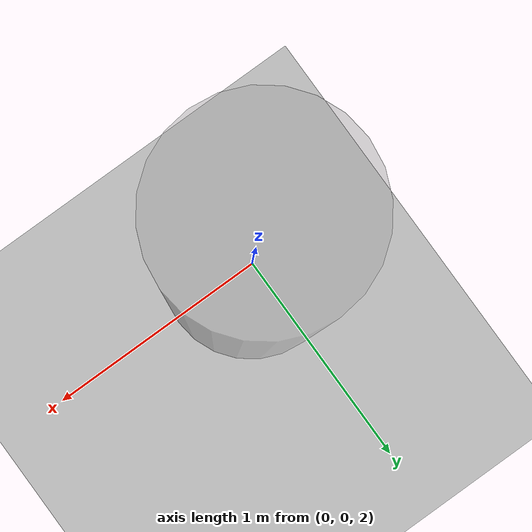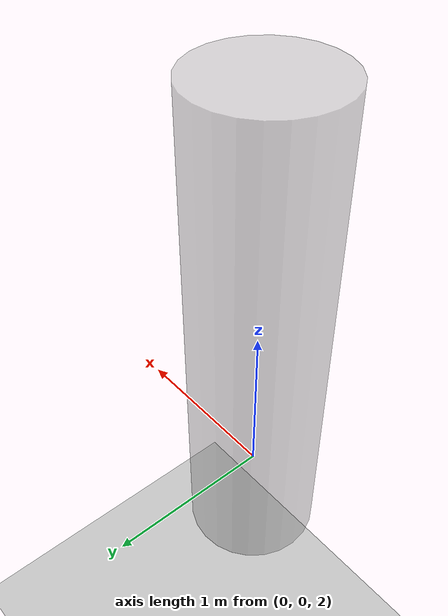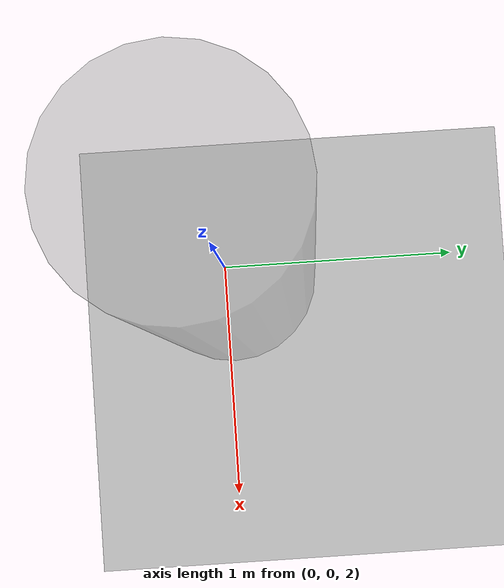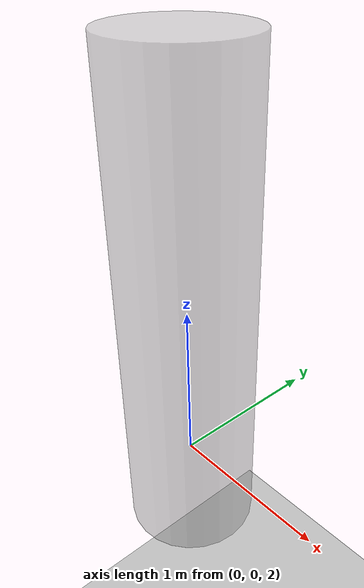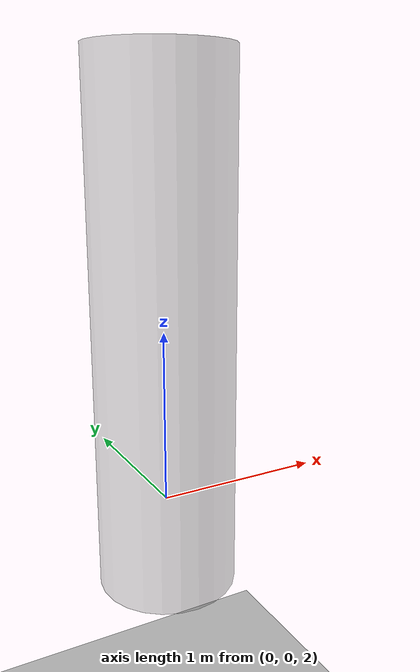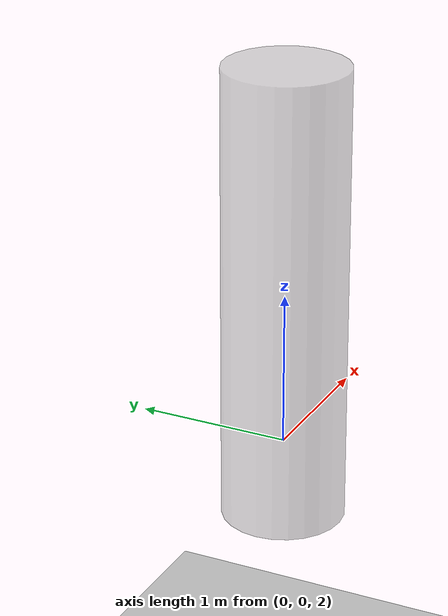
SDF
<?xml version="1.0"?>
<sdf version="1.5">
	<world name="empty">
	<include>
		<uri>model://ground_plane</uri>
	</include>

	<include>
		<uri>model://sun</uri>
	</include>

	<include>
		<uri>model://gaze_cylinder</uri>
	</include>

	<plugin name="cylinder_controller" filename="libcylinder_controller.so"/>
	</world>
</sdf>

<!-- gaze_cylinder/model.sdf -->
<sdf version="1.5">
	<model name="gaze_cylinder">
		<static>false</static>
		<link name="gaze_cylinder_link">
			<pose>0 0 3 0 0 0</pose>
			<collision name="cylinder_collision">
				<geometry>
					<cylinder>
						<radius>0.4</radius>
						<length>3</length>
					</cylinder>
				</geometry>

				<surface>
					<contact>
						<collide_without_contact>true</collide_without_contact>
					</contact>
				</surface>
			</collision>

			<visual name="visual">
				<transparency>0.5</transparency>
				<geometry>
					<cylinder>
						<radius>0.4</radius>
						<length>3</length>
					</cylinder>
				</geometry>

			</visual>
        		<sensor name="gaze_cylinder" type="contact">
				<update_rate> 5 </update_rate>
          			<contact>
            				<collision>cylinder_collision</collision>
					<topic>gaze</topic>
          			</contact>
        		</sensor>
		</link>
	</model>
</sdf>
